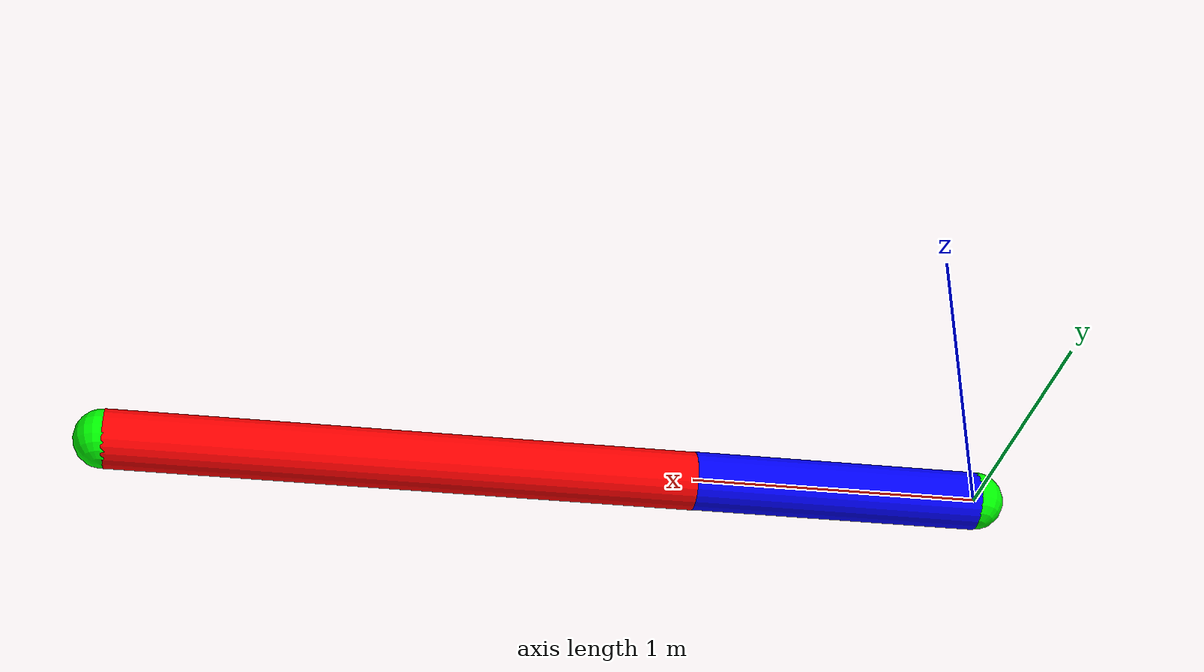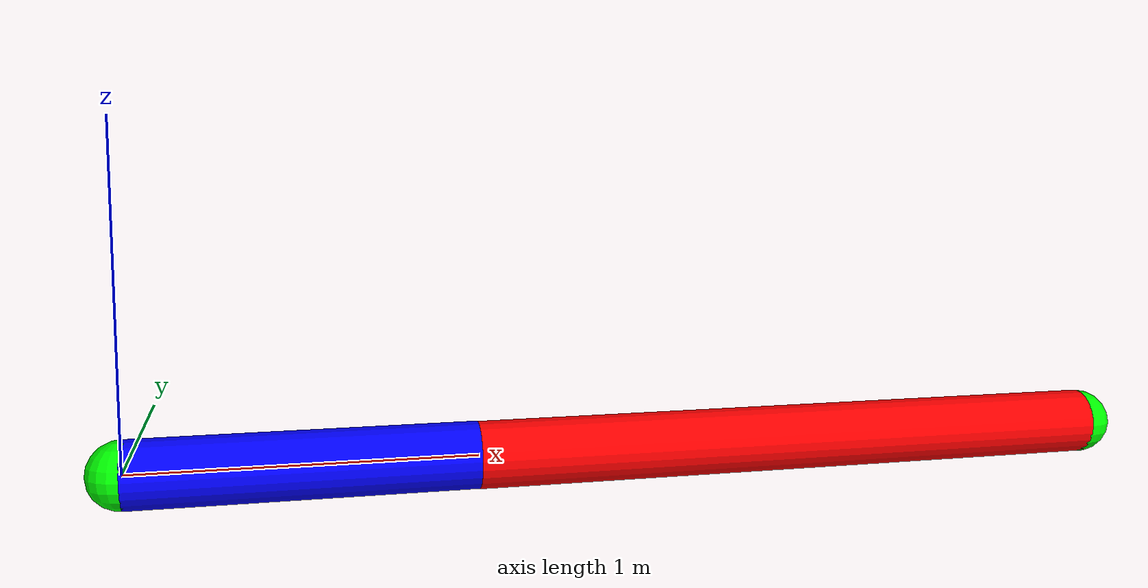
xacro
<?xml version="1.0"?>
    <robot xmlns:xacro="http://www.ros.org/wiki/xacro" name="robotarm">

<!-- Load in parameters from the YAML file -->
<xacro:property name="props" value="${load_yaml('$(find homework2)/config/arm.yaml')}"/>

<!-- Set parameters -->
<xacro:property name="L1" value="${props['L1']}" />
<xacro:property name="L2" value="${props['L2']}" />
<xacro:property name="r" value="0.1"/>

<!-- A planar robot with 2 revolute joints -->

<!-- The base for arm 1 to rotate about -->
<link name="base_link">
    <visual>
        <geometry>
            <sphere radius="0.1" />
        </geometry>
        <material name="green_metal">
            <color rgba="0 1 0 0" />
        </material>
    </visual>
</link>

<!-- The first link/ arm of the two arm robot -->
<link name="arm1">
    <visual>
    <origin xyz="0.5 0 0" rpy="0 1.57 0" />
    <geometry>
        <cylinder radius="0.1" length="1.0" />
    </geometry>
    <material name="blue_metal">
        <color rgba="0 0 1 1" />
    </material>
    </visual>
</link>

<!-- The second link/ arm of the robot -->
<link name="arm2">
    <visual>
    <origin xyz="1 0 0" rpy="0 1.57 0" />
        <geometry>
            <cylinder radius="0.1" length="2.0" />
        </geometry>
        <material name="red_mat">
           <color rgba="1 0 0 1" />
        </material>
    </visual>
</link>

<!-- The invisible link at end effector to create a frame -->
<link name="end_frame">
    <visual>
    <origin xyz="0 0 0" rpy="0 0 0" />
        <geometry>
            <sphere radius="0.1" />
        </geometry>
        <material name="green_metal">
            <color rgba="0 1 0 0" />
        </material>
    </visual>
</link>

<!-- Revolute joint between base and arm1 -->
<joint name="rev1" type="continuous">
    <origin xyz="0 0 0" rpy="0 0 0" />
    <parent link="base_link" />
    <child link="arm1" />
    <axis xyz="0 0 1" />
</joint>

<!-- Joint between arm1 and arm2 -->
<joint name="rev2" type="continuous">
    <origin xyz="1 0 0" rpy="0 0 0" />
    <parent link="arm1" />
    <child link="arm2" />
    <axis xyz="0 0 1" />
</joint>

<!-- To fix the end effector to end of arm2 -->
<joint name="end" type="fixed">
    <origin xyz="2 0 0" rpy="0 0 0" />
    <parent link="arm2" />
    <child link="end_frame" />
</joint>

</robot>
